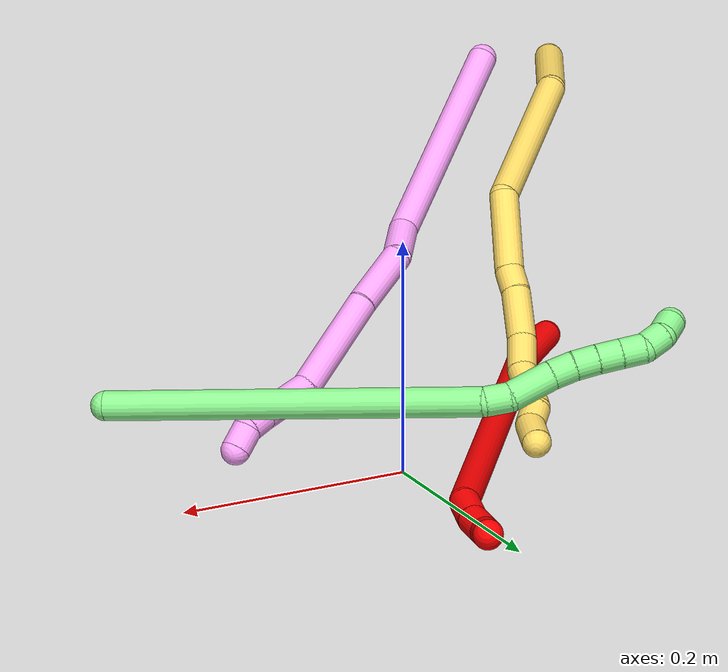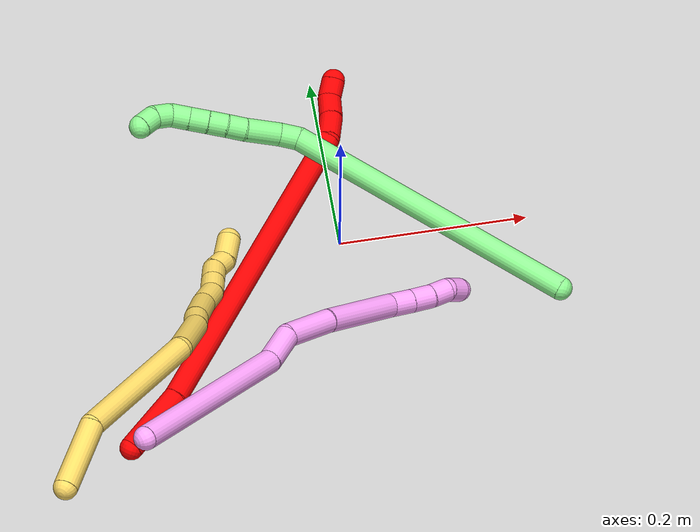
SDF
<sdf version="1.7">
 <world name="default">
  <model name="2">
   <static>0</static>
   <link name="2">
    <collision name="collision-cylinder-e_1_1_4">
     <pose>0.006515 0.023853 -0.028383 -2.44269 0.173947 -0.46972</pose>
     <geometry><cylinder><radius>0.0125</radius><length>0.075287</length></cylinder></geometry>
     <surface>
      <friction><ode><mu>1.16</mu><mu2>1.16</mu2><slip1>0</slip1><slip2>0</slip2></ode></friction>
      <contact><ode><kp>1e+06</kp><kd>1</kd><max_vel>0</max_vel><min_depth>0.001</min_depth></ode></contact>
     </surface>
    </collision>
    <visual name="visual-cylinder-e_1_1_4">
     <pose>0.006515 0.023853 -0.028383 -2.44269 0.173947 -0.46972</pose>
     <geometry><cylinder><radius>0.0125</radius><length>0.075287</length></cylinder></geometry>
     <material><ambient>1 0 0 1</ambient></material>
    </visual>
    <collision name="collision-cylinder-e_2_4_5">
     <pose>0.06875 0.144123 -0.191368 -2.52001 0.324627 -0.942941</pose>
     <geometry><cylinder><radius>0.0125</radius><length>0.349391</length></cylinder></geometry>
     <surface>
      <friction><ode><mu>1.16</mu><mu2>1.16</mu2><slip1>0</slip1><slip2>0</slip2></ode></friction>
      <contact><ode><kp>1e+06</kp><kd>1</kd><max_vel>0</max_vel><min_depth>0.001</min_depth></ode></contact>
     </surface>
    </collision>
    <visual name="visual-cylinder-e_2_4_5">
     <pose>0.06875 0.144123 -0.191368 -2.52001 0.324627 -0.942941</pose>
     <geometry><cylinder><radius>0.0125</radius><length>0.349391</length></cylinder></geometry>
     <material><ambient>1 0 0 1</ambient></material>
    </visual>
    <collision name="collision-cylinder-e_3_5_6">
     <pose>0.134232 0.246781 -0.335251 -2.54947 0.717615 -1.77599</pose>
     <geometry><cylinder><radius>0.0125</radius><length>0.02969</length></cylinder></geometry>
     <surface>
      <friction><ode><mu>1.16</mu><mu2>1.16</mu2><slip1>0</slip1><slip2>0</slip2></ode></friction>
      <contact><ode><kp>1e+06</kp><kd>1</kd><max_vel>0</max_vel><min_depth>0.001</min_depth></ode></contact>
     </surface>
    </collision>
    <visual name="visual-cylinder-e_3_5_6">
     <pose>0.134232 0.246781 -0.335251 -2.54947 0.717615 -1.77599</pose>
     <geometry><cylinder><radius>0.0125</radius><length>0.02969</length></cylinder></geometry>
     <material><ambient>1 0 0 1</ambient></material>
    </visual>
    <collision name="collision-cylinder-e_4_6_7">
     <pose>0.15345 0.256245 -0.352414 -2.75365 0.83761 -2.31039</pose>
     <geometry><cylinder><radius>0.0125</radius><length>0.025451</length></cylinder></geometry>
     <surface>
      <friction><ode><mu>1.16</mu><mu2>1.16</mu2><slip1>0</slip1><slip2>0</slip2></ode></friction>
      <contact><ode><kp>1e+06</kp><kd>1</kd><max_vel>0</max_vel><min_depth>0.001</min_depth></ode></contact>
     </surface>
    </collision>
    <visual name="visual-cylinder-e_4_6_7">
     <pose>0.15345 0.256245 -0.352414 -2.75365 0.83761 -2.31039</pose>
     <geometry><cylinder><radius>0.0125</radius><length>0.025451</length></cylinder></geometry>
     <material><ambient>1 0 0 1</ambient></material>
    </visual>
    <collision name="collision-cylinder-e_5_7_2">
     <pose>0.167049 0.261847 -0.369185 -2.87982 0.423169 -2.04196</pose>
     <geometry><cylinder><radius>0.0125</radius><length>0.020181</length></cylinder></geometry>
     <surface>
      <friction><ode><mu>1.16</mu><mu2>1.16</mu2><slip1>0</slip1><slip2>0</slip2></ode></friction>
      <contact><ode><kp>1e+06</kp><kd>1</kd><max_vel>0</max_vel><min_depth>0.001</min_depth></ode></contact>
     </surface>
    </collision>
    <visual name="visual-cylinder-e_5_7_2">
     <pose>0.167049 0.261847 -0.369185 -2.87982 0.423169 -2.04196</pose>
     <geometry><cylinder><radius>0.0125</radius><length>0.020181</length></cylinder></geometry>
     <material><ambient>1 0 0 1</ambient></material>
    </visual>
    <collision name="collision-sphere-2">
     <pose>0.171193 0.264228 -0.378071 0 -0 0</pose>
     <geometry><sphere><radius>0.0125</radius></sphere></geometry>
     <surface>
      <friction><ode><mu>1.16</mu><mu2>1.16</mu2><slip1>0</slip1><slip2>0</slip2></ode></friction>
      <contact><ode><kp>1e+06</kp><kd>1</kd><max_vel>0</max_vel><min_depth>0.001</min_depth></ode></contact>
     </surface>
    </collision>
    <visual name="visual-sphere-2">
     <pose>0.171193 0.264228 -0.378071 0 -0 0</pose>
     <geometry><sphere><radius>0.0125</radius></sphere></geometry>
     <material><ambient>1 0 0 1</ambient></material>
    </visual>
    <collision name="collision-sphere-7">
     <pose>0.162905 0.259466 -0.360298 0 -0 0</pose>
     <geometry><sphere><radius>0.0125</radius></sphere></geometry>
     <surface>
      <friction><ode><mu>1.16</mu><mu2>1.16</mu2><slip1>0</slip1><slip2>0</slip2></ode></friction>
      <contact><ode><kp>1e+06</kp><kd>1</kd><max_vel>0</max_vel><min_depth>0.001</min_depth></ode></contact>
     </surface>
    </collision>
    <visual name="visual-sphere-7">
     <pose>0.162905 0.259466 -0.360298 0 -0 0</pose>
     <geometry><sphere><radius>0.0125</radius></sphere></geometry>
     <material><ambient>1 0 0 1</ambient></material>
    </visual>
    <collision name="collision-sphere-6">
     <pose>0.143994 0.253023 -0.34453 0 -0 0</pose>
     <geometry><sphere><radius>0.0125</radius></sphere></geometry>
     <surface>
      <friction><ode><mu>1.16</mu><mu2>1.16</mu2><slip1>0</slip1><slip2>0</slip2></ode></friction>
      <contact><ode><kp>1e+06</kp><kd>1</kd><max_vel>0</max_vel><min_depth>0.001</min_depth></ode></contact>
     </surface>
    </collision>
    <visual name="visual-sphere-6">
     <pose>0.143994 0.253023 -0.34453 0 -0 0</pose>
     <geometry><sphere><radius>0.0125</radius></sphere></geometry>
     <material><ambient>1 0 0 1</ambient></material>
    </visual>
    <collision name="collision-sphere-5">
     <pose>0.12447 0.240539 -0.325971 0 -0 0</pose>
     <geometry><sphere><radius>0.0125</radius></sphere></geometry>
     <surface>
      <friction><ode><mu>1.16</mu><mu2>1.16</mu2><slip1>0</slip1><slip2>0</slip2></ode></friction>
      <contact><ode><kp>1e+06</kp><kd>1</kd><max_vel>0</max_vel><min_depth>0.001</min_depth></ode></contact>
     </surface>
    </collision>
    <visual name="visual-sphere-5">
     <pose>0.12447 0.240539 -0.325971 0 -0 0</pose>
     <geometry><sphere><radius>0.0125</radius></sphere></geometry>
     <material><ambient>1 0 0 1</ambient></material>
    </visual>
    <collision name="collision-sphere-1">
     <geometry><sphere><radius>0.0125</radius></sphere></geometry>
     <surface>
      <friction><ode><mu>1.16</mu><mu2>1.16</mu2><slip1>0</slip1><slip2>0</slip2></ode></friction>
      <contact><ode><kp>1e+06</kp><kd>1</kd><max_vel>0</max_vel><min_depth>0.001</min_depth></ode></contact>
     </surface>
    </collision>
    <visual name="visual-sphere-1">
     <geometry><sphere><radius>0.0125</radius></sphere></geometry>
     <material><ambient>1 0 0 1</ambient></material>
    </visual>
    <collision name="collision-sphere-4">
     <pose>0.01303 0.047707 -0.056766 0 -0 0</pose>
     <geometry><sphere><radius>0.0125</radius></sphere></geometry>
     <surface>
      <friction><ode><mu>1.16</mu><mu2>1.16</mu2><slip1>0</slip1><slip2>0</slip2></ode></friction>
      <contact><ode><kp>1e+06</kp><kd>1</kd><max_vel>0</max_vel><min_depth>0.001</min_depth></ode></contact>
     </surface>
    </collision>
    <visual name="visual-sphere-4">
     <pose>0.01303 0.047707 -0.056766 0 -0 0</pose>
     <geometry><sphere><radius>0.0125</radius></sphere></geometry>
     <material><ambient>1 0 0 1</ambient></material>
    </visual>
    <inertial>
     <pose>0.071546 0.142568 -0.190745 0 -0 0</pose>
     <mass>0.5</mass>
     <inertia>
      <ixx>-0.000727</ixx>
      <ixy>0</ixy>
      <ixz>0</ixz>
      <iyy>-0.003925</iyy>
      <iyz>0</iyz>
      <izz>-0.003175</izz>
     </inertia>
    </inertial>
   </link>
   <pose>-0.253486 -0.213635 0.011497 -2.35184 0.402722 2.14841</pose>
  </model>
  <model name="4">
   <static>0</static>
   <link name="4">
    <collision name="collision-cylinder-e_1_1_4">
     <pose>0.045437 0.013384 -0.095349 -3.00214 0.440927 -2.53739</pose>
     <geometry><cylinder><radius>0.0125</radius><length>0.212933</length></cylinder></geometry>
     <surface>
      <friction><ode><mu>1.16</mu><mu2>1.16</mu2><slip1>0</slip1><slip2>0</slip2></ode></friction>
      <contact><ode><kp>1e+06</kp><kd>1</kd><max_vel>0</max_vel><min_depth>0.001</min_depth></ode></contact>
     </surface>
    </collision>
    <visual name="visual-cylinder-e_1_1_4">
     <pose>0.045437 0.013384 -0.095349 -3.00214 0.440927 -2.53739</pose>
     <geometry><cylinder><radius>0.0125</radius><length>0.212933</length></cylinder></geometry>
     <material><ambient>1 0.65098 0.996078 1</ambient></material>
    </visual>
    <collision name="collision-cylinder-e_2_4_5">
     <pose>0.100914 0.022882 -0.208376 2.92527 0.506405 2.34694</pose>
     <geometry><cylinder><radius>0.0125</radius><length>0.041397</length></cylinder></geometry>
     <surface>
      <friction><ode><mu>1.16</mu><mu2>1.16</mu2><slip1>0</slip1><slip2>0</slip2></ode></friction>
      <contact><ode><kp>1e+06</kp><kd>1</kd><max_vel>0</max_vel><min_depth>0.001</min_depth></ode></contact>
     </surface>
    </collision>
    <visual name="visual-cylinder-e_2_4_5">
     <pose>0.100914 0.022882 -0.208376 2.92527 0.506405 2.34694</pose>
     <geometry><cylinder><radius>0.0125</radius><length>0.041397</length></cylinder></geometry>
     <material><ambient>1 0.65098 0.996078 1</ambient></material>
    </visual>
    <collision name="collision-cylinder-e_3_5_6">
     <pose>0.118691 0.025222 -0.253793 -2.92082 0.26572 -1.75685</pose>
     <geometry><cylinder><radius>0.0125</radius><length>0.058924</length></cylinder></geometry>
     <surface>
      <friction><ode><mu>1.16</mu><mu2>1.16</mu2><slip1>0</slip1><slip2>0</slip2></ode></friction>
      <contact><ode><kp>1e+06</kp><kd>1</kd><max_vel>0</max_vel><min_depth>0.001</min_depth></ode></contact>
     </surface>
    </collision>
    <visual name="visual-cylinder-e_3_5_6">
     <pose>0.118691 0.025222 -0.253793 -2.92082 0.26572 -1.75685</pose>
     <geometry><cylinder><radius>0.0125</radius><length>0.058924</length></cylinder></geometry>
     <material><ambient>1 0.65098 0.996078 1</ambient></material>
    </visual>
    <collision name="collision-cylinder-e_4_6_7">
     <pose>0.141005 0.045978 -0.324525 -2.81568 0.310809 -1.52255</pose>
     <geometry><cylinder><radius>0.0125</radius><length>0.095332</length></cylinder></geometry>
     <surface>
      <friction><ode><mu>1.16</mu><mu2>1.16</mu2><slip1>0</slip1><slip2>0</slip2></ode></friction>
      <contact><ode><kp>1e+06</kp><kd>1</kd><max_vel>0</max_vel><min_depth>0.001</min_depth></ode></contact>
     </surface>
    </collision>
    <visual name="visual-cylinder-e_4_6_7">
     <pose>0.141005 0.045978 -0.324525 -2.81568 0.310809 -1.52255</pose>
     <geometry><cylinder><radius>0.0125</radius><length>0.095332</length></cylinder></geometry>
     <material><ambient>1 0.65098 0.996078 1</ambient></material>
    </visual>
    <collision name="collision-cylinder-e_5_7_8">
     <pose>0.155337 0.063421 -0.379714 -2.90713 -0.019639 0.16638</pose>
     <geometry><cylinder><radius>0.0125</radius><length>0.025084</length></cylinder></geometry>
     <surface>
      <friction><ode><mu>1.16</mu><mu2>1.16</mu2><slip1>0</slip1><slip2>0</slip2></ode></friction>
      <contact><ode><kp>1e+06</kp><kd>1</kd><max_vel>0</max_vel><min_depth>0.001</min_depth></ode></contact>
     </surface>
    </collision>
    <visual name="visual-cylinder-e_5_7_8">
     <pose>0.155337 0.063421 -0.379714 -2.90713 -0.019639 0.16638</pose>
     <geometry><cylinder><radius>0.0125</radius><length>0.025084</length></cylinder></geometry>
     <material><ambient>1 0.65098 0.996078 1</ambient></material>
    </visual>
    <collision name="collision-cylinder-e_6_8_9">
     <pose>0.154883 0.068826 -0.403776 -2.93461 -0.017125 0.164515</pose>
     <geometry><cylinder><radius>0.0125</radius><length>0.024252</length></cylinder></geometry>
     <surface>
      <friction><ode><mu>1.16</mu><mu2>1.16</mu2><slip1>0</slip1><slip2>0</slip2></ode></friction>
      <contact><ode><kp>1e+06</kp><kd>1</kd><max_vel>0</max_vel><min_depth>0.001</min_depth></ode></contact>
     </surface>
    </collision>
    <visual name="visual-cylinder-e_6_8_9">
     <pose>0.154883 0.068826 -0.403776 -2.93461 -0.017125 0.164515</pose>
     <geometry><cylinder><radius>0.0125</radius><length>0.024252</length></cylinder></geometry>
     <material><ambient>1 0.65098 0.996078 1</ambient></material>
    </visual>
    <collision name="collision-cylinder-e_7_9_10">
     <pose>0.155421 0.072535 -0.426071 -3.02542 0.070931 -1.09564</pose>
     <geometry><cylinder><radius>0.0125</radius><length>0.021053</length></cylinder></geometry>
     <surface>
      <friction><ode><mu>1.16</mu><mu2>1.16</mu2><slip1>0</slip1><slip2>0</slip2></ode></friction>
      <contact><ode><kp>1e+06</kp><kd>1</kd><max_vel>0</max_vel><min_depth>0.001</min_depth></ode></contact>
     </surface>
    </collision>
    <visual name="visual-cylinder-e_7_9_10">
     <pose>0.155421 0.072535 -0.426071 -3.02542 0.070931 -1.09564</pose>
     <geometry><cylinder><radius>0.0125</radius><length>0.021053</length></cylinder></geometry>
     <material><ambient>1 0.65098 0.996078 1</ambient></material>
    </visual>
    <collision name="collision-cylinder-e_8_10_2">
     <pose>0.160091 0.078551 -0.444991 -2.62708 0.382474 -1.26883</pose>
     <geometry><cylinder><radius>0.0125</radius><length>0.021025</length></cylinder></geometry>
     <surface>
      <friction><ode><mu>1.16</mu><mu2>1.16</mu2><slip1>0</slip1><slip2>0</slip2></ode></friction>
      <contact><ode><kp>1e+06</kp><kd>1</kd><max_vel>0</max_vel><min_depth>0.001</min_depth></ode></contact>
     </surface>
    </collision>
    <visual name="visual-cylinder-e_8_10_2">
     <pose>0.160091 0.078551 -0.444991 -2.62708 0.382474 -1.26883</pose>
     <geometry><cylinder><radius>0.0125</radius><length>0.021025</length></cylinder></geometry>
     <material><ambient>1 0.65098 0.996078 1</ambient></material>
    </visual>
    <collision name="collision-sphere-2">
     <pose>0.164014 0.083351 -0.453481 0 -0 0</pose>
     <geometry><sphere><radius>0.0125</radius></sphere></geometry>
     <surface>
      <friction><ode><mu>1.16</mu><mu2>1.16</mu2><slip1>0</slip1><slip2>0</slip2></ode></friction>
      <contact><ode><kp>1e+06</kp><kd>1</kd><max_vel>0</max_vel><min_depth>0.001</min_depth></ode></contact>
     </surface>
    </collision>
    <visual name="visual-sphere-2">
     <pose>0.164014 0.083351 -0.453481 0 -0 0</pose>
     <geometry><sphere><radius>0.0125</radius></sphere></geometry>
     <material><ambient>1 0.65098 0.996078 1</ambient></material>
    </visual>
    <collision name="collision-sphere-10">
     <pose>0.156167 0.073752 -0.4365 0 -0 0</pose>
     <geometry><sphere><radius>0.0125</radius></sphere></geometry>
     <surface>
      <friction><ode><mu>1.16</mu><mu2>1.16</mu2><slip1>0</slip1><slip2>0</slip2></ode></friction>
      <contact><ode><kp>1e+06</kp><kd>1</kd><max_vel>0</max_vel><min_depth>0.001</min_depth></ode></contact>
     </surface>
    </collision>
    <visual name="visual-sphere-10">
     <pose>0.156167 0.073752 -0.4365 0 -0 0</pose>
     <geometry><sphere><radius>0.0125</radius></sphere></geometry>
     <material><ambient>1 0.65098 0.996078 1</ambient></material>
    </visual>
    <collision name="collision-sphere-9">
     <pose>0.154675 0.071318 -0.415642 0 -0 0</pose>
     <geometry><sphere><radius>0.0125</radius></sphere></geometry>
     <surface>
      <friction><ode><mu>1.16</mu><mu2>1.16</mu2><slip1>0</slip1><slip2>0</slip2></ode></friction>
      <contact><ode><kp>1e+06</kp><kd>1</kd><max_vel>0</max_vel><min_depth>0.001</min_depth></ode></contact>
     </surface>
    </collision>
    <visual name="visual-sphere-9">
     <pose>0.154675 0.071318 -0.415642 0 -0 0</pose>
     <geometry><sphere><radius>0.0125</radius></sphere></geometry>
     <material><ambient>1 0.65098 0.996078 1</ambient></material>
    </visual>
    <collision name="collision-sphere-4">
     <pose>0.090875 0.026767 -0.190698 0 -0 0</pose>
     <geometry><sphere><radius>0.0125</radius></sphere></geometry>
     <surface>
      <friction><ode><mu>1.16</mu><mu2>1.16</mu2><slip1>0</slip1><slip2>0</slip2></ode></friction>
      <contact><ode><kp>1e+06</kp><kd>1</kd><max_vel>0</max_vel><min_depth>0.001</min_depth></ode></contact>
     </surface>
    </collision>
    <visual name="visual-sphere-4">
     <pose>0.090875 0.026767 -0.190698 0 -0 0</pose>
     <geometry><sphere><radius>0.0125</radius></sphere></geometry>
     <material><ambient>1 0.65098 0.996078 1</ambient></material>
    </visual>
    <collision name="collision-sphere-1">
     <geometry><sphere><radius>0.0125</radius></sphere></geometry>
     <surface>
      <friction><ode><mu>1.16</mu><mu2>1.16</mu2><slip1>0</slip1><slip2>0</slip2></ode></friction>
      <contact><ode><kp>1e+06</kp><kd>1</kd><max_vel>0</max_vel><min_depth>0.001</min_depth></ode></contact>
     </surface>
    </collision>
    <visual name="visual-sphere-1">
     <geometry><sphere><radius>0.0125</radius></sphere></geometry>
     <material><ambient>1 0.65098 0.996078 1</ambient></material>
    </visual>
    <collision name="collision-sphere-8">
     <pose>0.15509 0.066334 -0.391911 0 -0 0</pose>
     <geometry><sphere><radius>0.0125</radius></sphere></geometry>
     <surface>
      <friction><ode><mu>1.16</mu><mu2>1.16</mu2><slip1>0</slip1><slip2>0</slip2></ode></friction>
      <contact><ode><kp>1e+06</kp><kd>1</kd><max_vel>0</max_vel><min_depth>0.001</min_depth></ode></contact>
     </surface>
    </collision>
    <visual name="visual-sphere-8">
     <pose>0.15509 0.066334 -0.391911 0 -0 0</pose>
     <geometry><sphere><radius>0.0125</radius></sphere></geometry>
     <material><ambient>1 0.65098 0.996078 1</ambient></material>
    </visual>
    <collision name="collision-sphere-5">
     <pose>0.110954 0.018997 -0.226055 0 -0 0</pose>
     <geometry><sphere><radius>0.0125</radius></sphere></geometry>
     <surface>
      <friction><ode><mu>1.16</mu><mu2>1.16</mu2><slip1>0</slip1><slip2>0</slip2></ode></friction>
      <contact><ode><kp>1e+06</kp><kd>1</kd><max_vel>0</max_vel><min_depth>0.001</min_depth></ode></contact>
     </surface>
    </collision>
    <visual name="visual-sphere-5">
     <pose>0.110954 0.018997 -0.226055 0 -0 0</pose>
     <geometry><sphere><radius>0.0125</radius></sphere></geometry>
     <material><ambient>1 0.65098 0.996078 1</ambient></material>
    </visual>
    <collision name="collision-sphere-6">
     <pose>0.126428 0.031448 -0.281531 0 -0 0</pose>
     <geometry><sphere><radius>0.0125</radius></sphere></geometry>
     <surface>
      <friction><ode><mu>1.16</mu><mu2>1.16</mu2><slip1>0</slip1><slip2>0</slip2></ode></friction>
      <contact><ode><kp>1e+06</kp><kd>1</kd><max_vel>0</max_vel><min_depth>0.001</min_depth></ode></contact>
     </surface>
    </collision>
    <visual name="visual-sphere-6">
     <pose>0.126428 0.031448 -0.281531 0 -0 0</pose>
     <geometry><sphere><radius>0.0125</radius></sphere></geometry>
     <material><ambient>1 0.65098 0.996078 1</ambient></material>
    </visual>
    <collision name="collision-sphere-7">
     <pose>0.155583 0.060508 -0.367518 0 -0 0</pose>
     <geometry><sphere><radius>0.0125</radius></sphere></geometry>
     <surface>
      <friction><ode><mu>1.16</mu><mu2>1.16</mu2><slip1>0</slip1><slip2>0</slip2></ode></friction>
      <contact><ode><kp>1e+06</kp><kd>1</kd><max_vel>0</max_vel><min_depth>0.001</min_depth></ode></contact>
     </surface>
    </collision>
    <visual name="visual-sphere-7">
     <pose>0.155583 0.060508 -0.367518 0 -0 0</pose>
     <geometry><sphere><radius>0.0125</radius></sphere></geometry>
     <material><ambient>1 0.65098 0.996078 1</ambient></material>
    </visual>
    <inertial>
     <pose>0.097159 0.03221 -0.224929 0 -0 0</pose>
     <mass>0.5</mass>
     <inertia>
      <ixx>-0.001097</ixx>
      <ixy>0</ixy>
      <ixz>0</ixz>
      <iyy>0.0002</iyy>
      <iyz>0</iyz>
      <izz>-0.000545</izz>
     </inertia>
    </inertial>
   </link>
   <pose>-0.248397 -0.324492 0.235269 -1.40811 0.666259 2.08623</pose>
  </model>
  <model name="5">
   <static>0</static>
   <link name="5">
    <collision name="collision-cylinder-e_1_1_4">
     <pose>0.007667 -0.004483 -0.037369 3.02219 0.200962 2.07129</pose>
     <geometry><cylinder><radius>0.0125</radius><length>0.07682</length></cylinder></geometry>
     <surface>
      <friction><ode><mu>1.16</mu><mu2>1.16</mu2><slip1>0</slip1><slip2>0</slip2></ode></friction>
      <contact><ode><kp>1e+06</kp><kd>1</kd><max_vel>0</max_vel><min_depth>0.001</min_depth></ode></contact>
     </surface>
    </collision>
    <visual name="visual-cylinder-e_1_1_4">
     <pose>0.007667 -0.004483 -0.037369 3.02219 0.200962 2.07129</pose>
     <geometry><cylinder><radius>0.0125</radius><length>0.07682</length></cylinder></geometry>
     <material><ambient>1 0.858824 0.4 1</ambient></material>
    </visual>
    <collision name="collision-cylinder-e_2_4_5">
     <pose>-0.00065 -0.015079 -0.150387 3.06097 -0.207574 -2.40271</pose>
     <geometry><cylinder><radius>0.0125</radius><length>0.155121</length></cylinder></geometry>
     <surface>
      <friction><ode><mu>1.16</mu><mu2>1.16</mu2><slip1>0</slip1><slip2>0</slip2></ode></friction>
      <contact><ode><kp>1e+06</kp><kd>1</kd><max_vel>0</max_vel><min_depth>0.001</min_depth></ode></contact>
     </surface>
    </collision>
    <visual name="visual-cylinder-e_2_4_5">
     <pose>-0.00065 -0.015079 -0.150387 3.06097 -0.207574 -2.40271</pose>
     <geometry><cylinder><radius>0.0125</radius><length>0.155121</length></cylinder></geometry>
     <material><ambient>1 0.858824 0.4 1</ambient></material>
    </visual>
    <collision name="collision-cylinder-e_3_5_6">
     <pose>-0.023666 -0.006339 -0.259559 -2.72453 -0.18949 0.844176</pose>
     <geometry><cylinder><radius>0.0125</radius><length>0.074668</length></cylinder></geometry>
     <surface>
      <friction><ode><mu>1.16</mu><mu2>1.16</mu2><slip1>0</slip1><slip2>0</slip2></ode></friction>
      <contact><ode><kp>1e+06</kp><kd>1</kd><max_vel>0</max_vel><min_depth>0.001</min_depth></ode></contact>
     </surface>
    </collision>
    <visual name="visual-cylinder-e_3_5_6">
     <pose>-0.023666 -0.006339 -0.259559 -2.72453 -0.18949 0.844176</pose>
     <geometry><cylinder><radius>0.0125</radius><length>0.074668</length></cylinder></geometry>
     <material><ambient>1 0.858824 0.4 1</ambient></material>
    </visual>
    <collision name="collision-cylinder-e_4_6_7">
     <pose>-0.030771 0.013709 -0.302647 -2.64404 -0.00663 0.026096</pose>
     <geometry><cylinder><radius>0.0125</radius><length>0.02177</length></cylinder></geometry>
     <surface>
      <friction><ode><mu>1.16</mu><mu2>1.16</mu2><slip1>0</slip1><slip2>0</slip2></ode></friction>
      <contact><ode><kp>1e+06</kp><kd>1</kd><max_vel>0</max_vel><min_depth>0.001</min_depth></ode></contact>
     </surface>
    </collision>
    <visual name="visual-cylinder-e_4_6_7">
     <pose>-0.030771 0.013709 -0.302647 -2.64404 -0.00663 0.026096</pose>
     <geometry><cylinder><radius>0.0125</radius><length>0.02177</length></cylinder></geometry>
     <material><ambient>1 0.858824 0.4 1</ambient></material>
    </visual>
    <collision name="collision-cylinder-e_5_7_8">
     <pose>-0.034491 0.028937 -0.332822 -2.68856 -0.157826 0.661043</pose>
     <geometry><cylinder><radius>0.0125</radius><length>0.046422</length></cylinder></geometry>
     <surface>
      <friction><ode><mu>1.16</mu><mu2>1.16</mu2><slip1>0</slip1><slip2>0</slip2></ode></friction>
      <contact><ode><kp>1e+06</kp><kd>1</kd><max_vel>0</max_vel><min_depth>0.001</min_depth></ode></contact>
     </surface>
    </collision>
    <visual name="visual-cylinder-e_5_7_8">
     <pose>-0.034491 0.028937 -0.332822 -2.68856 -0.157826 0.661043</pose>
     <geometry><cylinder><radius>0.0125</radius><length>0.046422</length></cylinder></geometry>
     <material><ambient>1 0.858824 0.4 1</ambient></material>
    </visual>
    <collision name="collision-cylinder-e_6_8_9">
     <pose>-0.040774 0.043304 -0.368025 -2.85289 -0.171381 1.06745</pose>
     <geometry><cylinder><radius>0.0125</radius><length>0.030899</length></cylinder></geometry>
     <surface>
      <friction><ode><mu>1.16</mu><mu2>1.16</mu2><slip1>0</slip1><slip2>0</slip2></ode></friction>
      <contact><ode><kp>1e+06</kp><kd>1</kd><max_vel>0</max_vel><min_depth>0.001</min_depth></ode></contact>
     </surface>
    </collision>
    <visual name="visual-cylinder-e_6_8_9">
     <pose>-0.040774 0.043304 -0.368025 -2.85289 -0.171381 1.06745</pose>
     <geometry><cylinder><radius>0.0125</radius><length>0.030899</length></cylinder></geometry>
     <material><ambient>1 0.858824 0.4 1</ambient></material>
    </visual>
    <collision name="collision-cylinder-e_7_9_10">
     <pose>-0.042065 0.05139 -0.392828 -2.78949 0.122891 -0.665937</pose>
     <geometry><cylinder><radius>0.0125</radius><length>0.021919</length></cylinder></geometry>
     <surface>
      <friction><ode><mu>1.16</mu><mu2>1.16</mu2><slip1>0</slip1><slip2>0</slip2></ode></friction>
      <contact><ode><kp>1e+06</kp><kd>1</kd><max_vel>0</max_vel><min_depth>0.001</min_depth></ode></contact>
     </surface>
    </collision>
    <visual name="visual-cylinder-e_7_9_10">
     <pose>-0.042065 0.05139 -0.392828 -2.78949 0.122891 -0.665937</pose>
     <geometry><cylinder><radius>0.0125</radius><length>0.021919</length></cylinder></geometry>
     <material><ambient>1 0.858824 0.4 1</ambient></material>
    </visual>
    <collision name="collision-cylinder-e_8_10_11">
     <pose>-0.039359 0.058975 -0.413685 -2.79597 0.119869 -0.662238</pose>
     <geometry><cylinder><radius>0.0125</radius><length>0.022798</length></cylinder></geometry>
     <surface>
      <friction><ode><mu>1.16</mu><mu2>1.16</mu2><slip1>0</slip1><slip2>0</slip2></ode></friction>
      <contact><ode><kp>1e+06</kp><kd>1</kd><max_vel>0</max_vel><min_depth>0.001</min_depth></ode></contact>
     </surface>
    </collision>
    <visual name="visual-cylinder-e_8_10_11">
     <pose>-0.039359 0.058975 -0.413685 -2.79597 0.119869 -0.662238</pose>
     <geometry><cylinder><radius>0.0125</radius><length>0.022798</length></cylinder></geometry>
     <material><ambient>1 0.858824 0.4 1</ambient></material>
    </visual>
    <collision name="collision-cylinder-e_9_11_12">
     <pose>-0.040233 0.062704 -0.434144 3.13093 -0.224186 -3.0469</pose>
     <geometry><cylinder><radius>0.0125</radius><length>0.020126</length></cylinder></geometry>
     <surface>
      <friction><ode><mu>1.16</mu><mu2>1.16</mu2><slip1>0</slip1><slip2>0</slip2></ode></friction>
      <contact><ode><kp>1e+06</kp><kd>1</kd><max_vel>0</max_vel><min_depth>0.001</min_depth></ode></contact>
     </surface>
    </collision>
    <visual name="visual-cylinder-e_9_11_12">
     <pose>-0.040233 0.062704 -0.434144 3.13093 -0.224186 -3.0469</pose>
     <geometry><cylinder><radius>0.0125</radius><length>0.020126</length></cylinder></geometry>
     <material><ambient>1 0.858824 0.4 1</ambient></material>
    </visual>
    <collision name="collision-cylinder-e_10_12_2">
     <pose>-0.038714 0.063567 -0.458163 -3.07358 0.257831 -2.62834</pose>
     <geometry><cylinder><radius>0.0125</radius><length>0.029457</length></cylinder></geometry>
     <surface>
      <friction><ode><mu>1.16</mu><mu2>1.16</mu2><slip1>0</slip1><slip2>0</slip2></ode></friction>
      <contact><ode><kp>1e+06</kp><kd>1</kd><max_vel>0</max_vel><min_depth>0.001</min_depth></ode></contact>
     </surface>
    </collision>
    <visual name="visual-cylinder-e_10_12_2">
     <pose>-0.038714 0.063567 -0.458163 -3.07358 0.257831 -2.62834</pose>
     <geometry><cylinder><radius>0.0125</radius><length>0.029457</length></cylinder></geometry>
     <material><ambient>1 0.858824 0.4 1</ambient></material>
    </visual>
    <collision name="collision-sphere-2">
     <pose>-0.034959 0.064535 -0.472372 0 -0 0</pose>
     <geometry><sphere><radius>0.0125</radius></sphere></geometry>
     <surface>
      <friction><ode><mu>1.16</mu><mu2>1.16</mu2><slip1>0</slip1><slip2>0</slip2></ode></friction>
      <contact><ode><kp>1e+06</kp><kd>1</kd><max_vel>0</max_vel><min_depth>0.001</min_depth></ode></contact>
     </surface>
    </collision>
    <visual name="visual-sphere-2">
     <pose>-0.034959 0.064535 -0.472372 0 -0 0</pose>
     <geometry><sphere><radius>0.0125</radius></sphere></geometry>
     <material><ambient>1 0.858824 0.4 1</ambient></material>
    </visual>
    <collision name="collision-sphere-12">
     <pose>-0.04247 0.0626 -0.443955 0 -0 0</pose>
     <geometry><sphere><radius>0.0125</radius></sphere></geometry>
     <surface>
      <friction><ode><mu>1.16</mu><mu2>1.16</mu2><slip1>0</slip1><slip2>0</slip2></ode></friction>
      <contact><ode><kp>1e+06</kp><kd>1</kd><max_vel>0</max_vel><min_depth>0.001</min_depth></ode></contact>
     </surface>
    </collision>
    <visual name="visual-sphere-12">
     <pose>-0.04247 0.0626 -0.443955 0 -0 0</pose>
     <geometry><sphere><radius>0.0125</radius></sphere></geometry>
     <material><ambient>1 0.858824 0.4 1</ambient></material>
    </visual>
    <collision name="collision-sphere-11">
     <pose>-0.037996 0.062809 -0.424333 0 -0 0</pose>
     <geometry><sphere><radius>0.0125</radius></sphere></geometry>
     <surface>
      <friction><ode><mu>1.16</mu><mu2>1.16</mu2><slip1>0</slip1><slip2>0</slip2></ode></friction>
      <contact><ode><kp>1e+06</kp><kd>1</kd><max_vel>0</max_vel><min_depth>0.001</min_depth></ode></contact>
     </surface>
    </collision>
    <visual name="visual-sphere-11">
     <pose>-0.037996 0.062809 -0.424333 0 -0 0</pose>
     <geometry><sphere><radius>0.0125</radius></sphere></geometry>
     <material><ambient>1 0.858824 0.4 1</ambient></material>
    </visual>
    <collision name="collision-sphere-10">
     <pose>-0.040722 0.055141 -0.403037 0 -0 0</pose>
     <geometry><sphere><radius>0.0125</radius></sphere></geometry>
     <surface>
      <friction><ode><mu>1.16</mu><mu2>1.16</mu2><slip1>0</slip1><slip2>0</slip2></ode></friction>
      <contact><ode><kp>1e+06</kp><kd>1</kd><max_vel>0</max_vel><min_depth>0.001</min_depth></ode></contact>
     </surface>
    </collision>
    <visual name="visual-sphere-10">
     <pose>-0.040722 0.055141 -0.403037 0 -0 0</pose>
     <geometry><sphere><radius>0.0125</radius></sphere></geometry>
     <material><ambient>1 0.858824 0.4 1</ambient></material>
    </visual>
    <collision name="collision-sphere-9">
     <pose>-0.043409 0.047639 -0.382618 0 -0 0</pose>
     <geometry><sphere><radius>0.0125</radius></sphere></geometry>
     <surface>
      <friction><ode><mu>1.16</mu><mu2>1.16</mu2><slip1>0</slip1><slip2>0</slip2></ode></friction>
      <contact><ode><kp>1e+06</kp><kd>1</kd><max_vel>0</max_vel><min_depth>0.001</min_depth></ode></contact>
     </surface>
    </collision>
    <visual name="visual-sphere-9">
     <pose>-0.043409 0.047639 -0.382618 0 -0 0</pose>
     <geometry><sphere><radius>0.0125</radius></sphere></geometry>
     <material><ambient>1 0.858824 0.4 1</ambient></material>
    </visual>
    <collision name="collision-sphere-4">
     <pose>0.015334 -0.008967 -0.074738 0 -0 0</pose>
     <geometry><sphere><radius>0.0125</radius></sphere></geometry>
     <surface>
      <friction><ode><mu>1.16</mu><mu2>1.16</mu2><slip1>0</slip1><slip2>0</slip2></ode></friction>
      <contact><ode><kp>1e+06</kp><kd>1</kd><max_vel>0</max_vel><min_depth>0.001</min_depth></ode></contact>
     </surface>
    </collision>
    <visual name="visual-sphere-4">
     <pose>0.015334 -0.008967 -0.074738 0 -0 0</pose>
     <geometry><sphere><radius>0.0125</radius></sphere></geometry>
     <material><ambient>1 0.858824 0.4 1</ambient></material>
    </visual>
    <collision name="collision-sphere-1">
     <geometry><sphere><radius>0.0125</radius></sphere></geometry>
     <surface>
      <friction><ode><mu>1.16</mu><mu2>1.16</mu2><slip1>0</slip1><slip2>0</slip2></ode></friction>
      <contact><ode><kp>1e+06</kp><kd>1</kd><max_vel>0</max_vel><min_depth>0.001</min_depth></ode></contact>
     </surface>
    </collision>
    <visual name="visual-sphere-1">
     <geometry><sphere><radius>0.0125</radius></sphere></geometry>
     <material><ambient>1 0.858824 0.4 1</ambient></material>
    </visual>
    <collision name="collision-sphere-8">
     <pose>-0.038139 0.03897 -0.353432 0 -0 0</pose>
     <geometry><sphere><radius>0.0125</radius></sphere></geometry>
     <surface>
      <friction><ode><mu>1.16</mu><mu2>1.16</mu2><slip1>0</slip1><slip2>0</slip2></ode></friction>
      <contact><ode><kp>1e+06</kp><kd>1</kd><max_vel>0</max_vel><min_depth>0.001</min_depth></ode></contact>
     </surface>
    </collision>
    <visual name="visual-sphere-8">
     <pose>-0.038139 0.03897 -0.353432 0 -0 0</pose>
     <geometry><sphere><radius>0.0125</radius></sphere></geometry>
     <material><ambient>1 0.858824 0.4 1</ambient></material>
    </visual>
    <collision name="collision-sphere-5">
     <pose>-0.016634 -0.021191 -0.226036 0 -0 0</pose>
     <geometry><sphere><radius>0.0125</radius></sphere></geometry>
     <surface>
      <friction><ode><mu>1.16</mu><mu2>1.16</mu2><slip1>0</slip1><slip2>0</slip2></ode></friction>
      <contact><ode><kp>1e+06</kp><kd>1</kd><max_vel>0</max_vel><min_depth>0.001</min_depth></ode></contact>
     </surface>
    </collision>
    <visual name="visual-sphere-5">
     <pose>-0.016634 -0.021191 -0.226036 0 -0 0</pose>
     <geometry><sphere><radius>0.0125</radius></sphere></geometry>
     <material><ambient>1 0.858824 0.4 1</ambient></material>
    </visual>
    <collision name="collision-sphere-6">
     <pose>-0.030698 0.008514 -0.293082 0 -0 0</pose>
     <geometry><sphere><radius>0.0125</radius></sphere></geometry>
     <surface>
      <friction><ode><mu>1.16</mu><mu2>1.16</mu2><slip1>0</slip1><slip2>0</slip2></ode></friction>
      <contact><ode><kp>1e+06</kp><kd>1</kd><max_vel>0</max_vel><min_depth>0.001</min_depth></ode></contact>
     </surface>
    </collision>
    <visual name="visual-sphere-6">
     <pose>-0.030698 0.008514 -0.293082 0 -0 0</pose>
     <geometry><sphere><radius>0.0125</radius></sphere></geometry>
     <material><ambient>1 0.858824 0.4 1</ambient></material>
    </visual>
    <collision name="collision-sphere-7">
     <pose>-0.030843 0.018904 -0.312212 0 -0 0</pose>
     <geometry><sphere><radius>0.0125</radius></sphere></geometry>
     <surface>
      <friction><ode><mu>1.16</mu><mu2>1.16</mu2><slip1>0</slip1><slip2>0</slip2></ode></friction>
      <contact><ode><kp>1e+06</kp><kd>1</kd><max_vel>0</max_vel><min_depth>0.001</min_depth></ode></contact>
     </surface>
    </collision>
    <visual name="visual-sphere-7">
     <pose>-0.030843 0.018904 -0.312212 0 -0 0</pose>
     <geometry><sphere><radius>0.0125</radius></sphere></geometry>
     <material><ambient>1 0.858824 0.4 1</ambient></material>
    </visual>
    <inertial>
     <pose>-0.017159 0.010857 -0.238531 0 -0 0</pose>
     <mass>0.5</mass>
     <inertia>
      <ixx>-0.000358</ixx>
      <ixy>0</ixy>
      <ixz>0</ixz>
      <iyy>9.3e-05</iyy>
      <iyz>0</iyz>
      <izz>3.6e-05</izz>
     </inertia>
    </inertial>
   </link>
   <pose>-0.333377 -0.356291 0.216054 -1.19755 -0.663504 2.34422</pose>
  </model>
  <model name="13">
   <static>0</static>
   <link name="13">
    <collision name="collision-cylinder-e_1_1_4">
     <pose>-0.026183 0.138508 -0.07551 -2.06992 -0.164475 0.275858</pose>
     <geometry><cylinder><radius>0.0125</radius><length>0.319824</length></cylinder></geometry>
     <surface>
      <friction><ode><mu>1.16</mu><mu2>1.16</mu2><slip1>0</slip1><slip2>0</slip2></ode></friction>
      <contact><ode><kp>1e+06</kp><kd>1</kd><max_vel>0</max_vel><min_depth>0.001</min_depth></ode></contact>
     </surface>
    </collision>
    <visual name="visual-cylinder-e_1_1_4">
     <pose>-0.026183 0.138508 -0.07551 -2.06992 -0.164475 0.275858</pose>
     <geometry><cylinder><radius>0.0125</radius><length>0.319824</length></cylinder></geometry>
     <material><ambient>0.564706 0.984314 0.572549 1</ambient></material>
    </visual>
    <collision name="collision-cylinder-e_2_4_5">
     <pose>-0.054041 0.287402 -0.152287 -1.69222 -0.158719 0.17916</pose>
     <geometry><cylinder><radius>0.0125</radius><length>0.02119</length></cylinder></geometry>
     <surface>
      <friction><ode><mu>1.16</mu><mu2>1.16</mu2><slip1>0</slip1><slip2>0</slip2></ode></friction>
      <contact><ode><kp>1e+06</kp><kd>1</kd><max_vel>0</max_vel><min_depth>0.001</min_depth></ode></contact>
     </surface>
    </collision>
    <visual name="visual-cylinder-e_2_4_5">
     <pose>-0.054041 0.287402 -0.152287 -1.69222 -0.158719 0.17916</pose>
     <geometry><cylinder><radius>0.0125</radius><length>0.02119</length></cylinder></geometry>
     <material><ambient>0.564706 0.984314 0.572549 1</ambient></material>
    </visual>
    <collision name="collision-cylinder-e_3_5_6">
     <pose>-0.054365 0.317001 -0.15133 -1.45557 0.069713 -0.062115</pose>
     <geometry><cylinder><radius>0.0125</radius><length>0.038779</length></cylinder></geometry>
     <surface>
      <friction><ode><mu>1.16</mu><mu2>1.16</mu2><slip1>0</slip1><slip2>0</slip2></ode></friction>
      <contact><ode><kp>1e+06</kp><kd>1</kd><max_vel>0</max_vel><min_depth>0.001</min_depth></ode></contact>
     </surface>
    </collision>
    <visual name="visual-cylinder-e_3_5_6">
     <pose>-0.054365 0.317001 -0.15133 -1.45557 0.069713 -0.062115</pose>
     <geometry><cylinder><radius>0.0125</radius><length>0.038779</length></cylinder></geometry>
     <material><ambient>0.564706 0.984314 0.572549 1</ambient></material>
    </visual>
    <collision name="collision-cylinder-e_4_6_7">
     <pose>-0.052869 0.34629 -0.149077 -1.56789 0.014425 -0.014383</pose>
     <geometry><cylinder><radius>0.0125</radius><length>0.020152</length></cylinder></geometry>
     <surface>
      <friction><ode><mu>1.16</mu><mu2>1.16</mu2><slip1>0</slip1><slip2>0</slip2></ode></friction>
      <contact><ode><kp>1e+06</kp><kd>1</kd><max_vel>0</max_vel><min_depth>0.001</min_depth></ode></contact>
     </surface>
    </collision>
    <visual name="visual-cylinder-e_4_6_7">
     <pose>-0.052869 0.34629 -0.149077 -1.56789 0.014425 -0.014383</pose>
     <geometry><cylinder><radius>0.0125</radius><length>0.020152</length></cylinder></geometry>
     <material><ambient>0.564706 0.984314 0.572549 1</ambient></material>
    </visual>
    <collision name="collision-cylinder-e_5_7_8">
     <pose>-0.053599 0.366319 -0.149492 -1.61534 -0.087639 0.091627</pose>
     <geometry><cylinder><radius>0.0125</radius><length>0.020007</length></cylinder></geometry>
     <surface>
      <friction><ode><mu>1.16</mu><mu2>1.16</mu2><slip1>0</slip1><slip2>0</slip2></ode></friction>
      <contact><ode><kp>1e+06</kp><kd>1</kd><max_vel>0</max_vel><min_depth>0.001</min_depth></ode></contact>
     </surface>
    </collision>
    <visual name="visual-cylinder-e_5_7_8">
     <pose>-0.053599 0.366319 -0.149492 -1.61534 -0.087639 0.091627</pose>
     <geometry><cylinder><radius>0.0125</radius><length>0.020007</length></cylinder></geometry>
     <material><ambient>0.564706 0.984314 0.572549 1</ambient></material>
    </visual>
    <collision name="collision-cylinder-e_6_8_9">
     <pose>-0.055694 0.386188 -0.150571 -1.63477 -0.122181 0.130236</pose>
     <geometry><cylinder><radius>0.0125</radius><length>0.020017</length></cylinder></geometry>
     <surface>
      <friction><ode><mu>1.16</mu><mu2>1.16</mu2><slip1>0</slip1><slip2>0</slip2></ode></friction>
      <contact><ode><kp>1e+06</kp><kd>1</kd><max_vel>0</max_vel><min_depth>0.001</min_depth></ode></contact>
     </surface>
    </collision>
    <visual name="visual-cylinder-e_6_8_9">
     <pose>-0.055694 0.386188 -0.150571 -1.63477 -0.122181 0.130236</pose>
     <geometry><cylinder><radius>0.0125</radius><length>0.020017</length></cylinder></geometry>
     <material><ambient>0.564706 0.984314 0.572549 1</ambient></material>
    </visual>
    <collision name="collision-cylinder-e_7_9_10">
     <pose>-0.058165 0.406004 -0.151907 -1.64148 -0.125365 0.134528</pose>
     <geometry><cylinder><radius>0.0125</radius><length>0.020013</length></cylinder></geometry>
     <surface>
      <friction><ode><mu>1.16</mu><mu2>1.16</mu2><slip1>0</slip1><slip2>0</slip2></ode></friction>
      <contact><ode><kp>1e+06</kp><kd>1</kd><max_vel>0</max_vel><min_depth>0.001</min_depth></ode></contact>
     </surface>
    </collision>
    <visual name="visual-cylinder-e_7_9_10">
     <pose>-0.058165 0.406004 -0.151907 -1.64148 -0.125365 0.134528</pose>
     <geometry><cylinder><radius>0.0125</radius><length>0.020013</length></cylinder></geometry>
     <material><ambient>0.564706 0.984314 0.572549 1</ambient></material>
    </visual>
    <collision name="collision-cylinder-e_8_10_11">
     <pose>-0.05883 0.425104 -0.148719 -1.17074 0.058692 -0.038912</pose>
     <geometry><cylinder><radius>0.0125</radius><length>0.020003</length></cylinder></geometry>
     <surface>
      <friction><ode><mu>1.16</mu><mu2>1.16</mu2><slip1>0</slip1><slip2>0</slip2></ode></friction>
      <contact><ode><kp>1e+06</kp><kd>1</kd><max_vel>0</max_vel><min_depth>0.001</min_depth></ode></contact>
     </surface>
    </collision>
    <visual name="visual-cylinder-e_8_10_11">
     <pose>-0.05883 0.425104 -0.148719 -1.17074 0.058692 -0.038912</pose>
     <geometry><cylinder><radius>0.0125</radius><length>0.020003</length></cylinder></geometry>
     <material><ambient>0.564706 0.984314 0.572549 1</ambient></material>
    </visual>
    <collision name="collision-cylinder-e_9_11_2">
     <pose>-0.057581 0.440787 -0.13724 -0.707199 0.066238 -0.024457</pose>
     <geometry><cylinder><radius>0.0125</radius><length>0.020016</length></cylinder></geometry>
     <surface>
      <friction><ode><mu>1.16</mu><mu2>1.16</mu2><slip1>0</slip1><slip2>0</slip2></ode></friction>
      <contact><ode><kp>1e+06</kp><kd>1</kd><max_vel>0</max_vel><min_depth>0.001</min_depth></ode></contact>
     </surface>
    </collision>
    <visual name="visual-cylinder-e_9_11_2">
     <pose>-0.057581 0.440787 -0.13724 -0.707199 0.066238 -0.024457</pose>
     <geometry><cylinder><radius>0.0125</radius><length>0.020016</length></cylinder></geometry>
     <material><ambient>0.564706 0.984314 0.572549 1</ambient></material>
    </visual>
    <collision name="collision-sphere-2">
     <pose>-0.056918 0.447275 -0.129649 0 -0 0</pose>
     <geometry><sphere><radius>0.0125</radius></sphere></geometry>
     <surface>
      <friction><ode><mu>1.16</mu><mu2>1.16</mu2><slip1>0</slip1><slip2>0</slip2></ode></friction>
      <contact><ode><kp>1e+06</kp><kd>1</kd><max_vel>0</max_vel><min_depth>0.001</min_depth></ode></contact>
     </surface>
    </collision>
    <visual name="visual-sphere-2">
     <pose>-0.056918 0.447275 -0.129649 0 -0 0</pose>
     <geometry><sphere><radius>0.0125</radius></sphere></geometry>
     <material><ambient>0.564706 0.984314 0.572549 1</ambient></material>
    </visual>
    <collision name="collision-sphere-11">
     <pose>-0.058243 0.4343 -0.144831 0 -0 0</pose>
     <geometry><sphere><radius>0.0125</radius></sphere></geometry>
     <surface>
      <friction><ode><mu>1.16</mu><mu2>1.16</mu2><slip1>0</slip1><slip2>0</slip2></ode></friction>
      <contact><ode><kp>1e+06</kp><kd>1</kd><max_vel>0</max_vel><min_depth>0.001</min_depth></ode></contact>
     </surface>
    </collision>
    <visual name="visual-sphere-11">
     <pose>-0.058243 0.4343 -0.144831 0 -0 0</pose>
     <geometry><sphere><radius>0.0125</radius></sphere></geometry>
     <material><ambient>0.564706 0.984314 0.572549 1</ambient></material>
    </visual>
    <collision name="collision-sphere-10">
     <pose>-0.059417 0.415908 -0.152608 0 -0 0</pose>
     <geometry><sphere><radius>0.0125</radius></sphere></geometry>
     <surface>
      <friction><ode><mu>1.16</mu><mu2>1.16</mu2><slip1>0</slip1><slip2>0</slip2></ode></friction>
      <contact><ode><kp>1e+06</kp><kd>1</kd><max_vel>0</max_vel><min_depth>0.001</min_depth></ode></contact>
     </surface>
    </collision>
    <visual name="visual-sphere-10">
     <pose>-0.059417 0.415908 -0.152608 0 -0 0</pose>
     <geometry><sphere><radius>0.0125</radius></sphere></geometry>
     <material><ambient>0.564706 0.984314 0.572549 1</ambient></material>
    </visual>
    <collision name="collision-sphere-9">
     <pose>-0.056914 0.396101 -0.151206 0 -0 0</pose>
     <geometry><sphere><radius>0.0125</radius></sphere></geometry>
     <surface>
      <friction><ode><mu>1.16</mu><mu2>1.16</mu2><slip1>0</slip1><slip2>0</slip2></ode></friction>
      <contact><ode><kp>1e+06</kp><kd>1</kd><max_vel>0</max_vel><min_depth>0.001</min_depth></ode></contact>
     </surface>
    </collision>
    <visual name="visual-sphere-9">
     <pose>-0.056914 0.396101 -0.151206 0 -0 0</pose>
     <geometry><sphere><radius>0.0125</radius></sphere></geometry>
     <material><ambient>0.564706 0.984314 0.572549 1</ambient></material>
    </visual>
    <collision name="collision-sphere-4">
     <pose>-0.052366 0.277017 -0.15102 0 -0 0</pose>
     <geometry><sphere><radius>0.0125</radius></sphere></geometry>
     <surface>
      <friction><ode><mu>1.16</mu><mu2>1.16</mu2><slip1>0</slip1><slip2>0</slip2></ode></friction>
      <contact><ode><kp>1e+06</kp><kd>1</kd><max_vel>0</max_vel><min_depth>0.001</min_depth></ode></contact>
     </surface>
    </collision>
    <visual name="visual-sphere-4">
     <pose>-0.052366 0.277017 -0.15102 0 -0 0</pose>
     <geometry><sphere><radius>0.0125</radius></sphere></geometry>
     <material><ambient>0.564706 0.984314 0.572549 1</ambient></material>
    </visual>
    <collision name="collision-sphere-1">
     <geometry><sphere><radius>0.0125</radius></sphere></geometry>
     <surface>
      <friction><ode><mu>1.16</mu><mu2>1.16</mu2><slip1>0</slip1><slip2>0</slip2></ode></friction>
      <contact><ode><kp>1e+06</kp><kd>1</kd><max_vel>0</max_vel><min_depth>0.001</min_depth></ode></contact>
     </surface>
    </collision>
    <visual name="visual-sphere-1">
     <geometry><sphere><radius>0.0125</radius></sphere></geometry>
     <material><ambient>0.564706 0.984314 0.572549 1</ambient></material>
    </visual>
    <collision name="collision-sphere-8">
     <pose>-0.054475 0.376275 -0.149935 0 -0 0</pose>
     <geometry><sphere><radius>0.0125</radius></sphere></geometry>
     <surface>
      <friction><ode><mu>1.16</mu><mu2>1.16</mu2><slip1>0</slip1><slip2>0</slip2></ode></friction>
      <contact><ode><kp>1e+06</kp><kd>1</kd><max_vel>0</max_vel><min_depth>0.001</min_depth></ode></contact>
     </surface>
    </collision>
    <visual name="visual-sphere-8">
     <pose>-0.054475 0.376275 -0.149935 0 -0 0</pose>
     <geometry><sphere><radius>0.0125</radius></sphere></geometry>
     <material><ambient>0.564706 0.984314 0.572549 1</ambient></material>
    </visual>
    <collision name="collision-sphere-5">
     <pose>-0.055715 0.297787 -0.153554 0 -0 0</pose>
     <geometry><sphere><radius>0.0125</radius></sphere></geometry>
     <surface>
      <friction><ode><mu>1.16</mu><mu2>1.16</mu2><slip1>0</slip1><slip2>0</slip2></ode></friction>
      <contact><ode><kp>1e+06</kp><kd>1</kd><max_vel>0</max_vel><min_depth>0.001</min_depth></ode></contact>
     </surface>
    </collision>
    <visual name="visual-sphere-5">
     <pose>-0.055715 0.297787 -0.153554 0 -0 0</pose>
     <geometry><sphere><radius>0.0125</radius></sphere></geometry>
     <material><ambient>0.564706 0.984314 0.572549 1</ambient></material>
    </visual>
    <collision name="collision-sphere-6">
     <pose>-0.053014 0.336215 -0.149107 0 -0 0</pose>
     <geometry><sphere><radius>0.0125</radius></sphere></geometry>
     <surface>
      <friction><ode><mu>1.16</mu><mu2>1.16</mu2><slip1>0</slip1><slip2>0</slip2></ode></friction>
      <contact><ode><kp>1e+06</kp><kd>1</kd><max_vel>0</max_vel><min_depth>0.001</min_depth></ode></contact>
     </surface>
    </collision>
    <visual name="visual-sphere-6">
     <pose>-0.053014 0.336215 -0.149107 0 -0 0</pose>
     <geometry><sphere><radius>0.0125</radius></sphere></geometry>
     <material><ambient>0.564706 0.984314 0.572549 1</ambient></material>
    </visual>
    <collision name="collision-sphere-7">
     <pose>-0.052723 0.356364 -0.149048 0 -0 0</pose>
     <geometry><sphere><radius>0.0125</radius></sphere></geometry>
     <surface>
      <friction><ode><mu>1.16</mu><mu2>1.16</mu2><slip1>0</slip1><slip2>0</slip2></ode></friction>
      <contact><ode><kp>1e+06</kp><kd>1</kd><max_vel>0</max_vel><min_depth>0.001</min_depth></ode></contact>
     </surface>
    </collision>
    <visual name="visual-sphere-7">
     <pose>-0.052723 0.356364 -0.149048 0 -0 0</pose>
     <geometry><sphere><radius>0.0125</radius></sphere></geometry>
     <material><ambient>0.564706 0.984314 0.572549 1</ambient></material>
    </visual>
    <inertial>
     <pose>-0.036746 0.22034 -0.102032 0 -0 0</pose>
     <mass>0.5</mass>
     <inertia>
      <ixx>0.003348</ixx>
      <ixy>0</ixy>
      <ixz>0</ixz>
      <iyy>-0.000381</iyy>
      <iyz>0</iyz>
      <izz>-0.00195</izz>
     </inertia>
    </inertial>
   </link>
   <pose>0.212597 -0.121586 0.054745 1.54752 -1.2751 -0.187757</pose>
  </model>
 </world>
</sdf>
